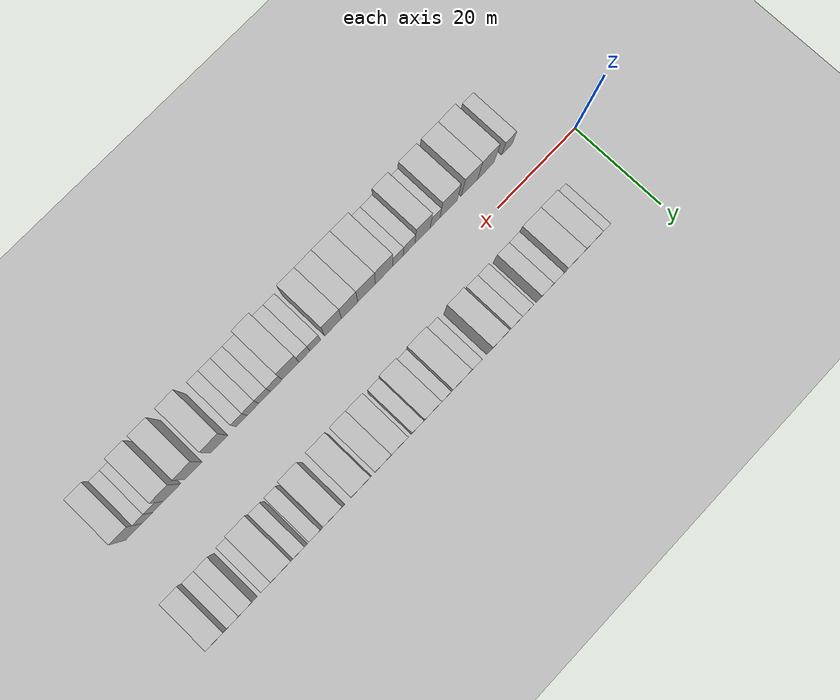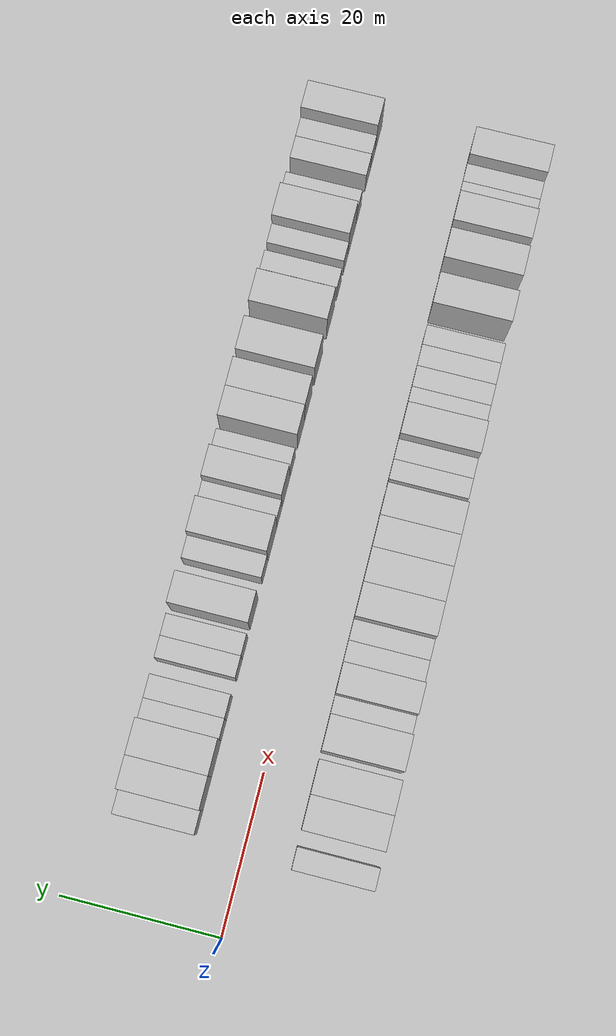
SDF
<sdf version="1.6">
 <world name="default">
  <include><name>ground_plane_1</name><uri>model://HANNAS_ground_plane</uri></include>
  <include>
   <name>ground_plane_2</name>
   <uri>model://HANNAS_ground_plane</uri>
   <pose>100 0 0  0 0 0</pose>
  </include>
  <model name="building_1">
   <static>1</static>
   <pose>12.4693 11.0000 0 0.000000 0.000000 1.570796</pose>
   <link name="link">
    <pose>0 0 3.00 0 0 0</pose>
    <collision name="collision"><geometry><box><size>10.0000 2.9386 6.0000</size></box></geometry></collision>
    <visual name="visual">
     <cast_shadows>0</cast_shadows>
     <geometry><box><size>10.0000 2.9386 6.0000</size></box></geometry>
     <material>
      <script>
       <uri>model://HANNAS_wall/materials/scripts</uri>
       <uri>model://HANNAS_wall/materials/textures</uri>
       <name>vrc/HANNAS_wall</name>
      </script>
     </material>
    </visual>
   </link>
  </model>
  <model name="building_2">
   <static>1</static>
   <pose>15.9527 11.0000 0 0.000000 0.000000 1.570796</pose>
   <link name="link">
    <pose>0 0 4.50 0 0 0</pose>
    <collision name="collision"><geometry><box><size>10.0000 4.0283 9.0000</size></box></geometry></collision>
    <visual name="visual">
     <cast_shadows>0</cast_shadows>
     <geometry><box><size>10.0000 4.0283 9.0000</size></box></geometry>
     <material>
      <script>
       <uri>model://HANNAS_wall/materials/scripts</uri>
       <uri>model://HANNAS_wall/materials/textures</uri>
       <name>vrc/HANNAS_wall</name>
      </script>
     </material>
    </visual>
   </link>
  </model>
  <model name="building_3">
   <static>1</static>
   <pose>20.1891 11.0000 0 0.000000 0.000000 1.570796</pose>
   <link name="link">
    <pose>0 0 4.50 0 0 0</pose>
    <collision name="collision"><geometry><box><size>10.0000 4.4444 9.0000</size></box></geometry></collision>
    <visual name="visual">
     <cast_shadows>0</cast_shadows>
     <geometry><box><size>10.0000 4.4444 9.0000</size></box></geometry>
     <material>
      <script>
       <uri>model://HANNAS_wall/materials/scripts</uri>
       <uri>model://HANNAS_wall/materials/textures</uri>
       <name>vrc/HANNAS_wall</name>
      </script>
     </material>
    </visual>
   </link>
  </model>
  <model name="building_4">
   <static>1</static>
   <pose>23.6728 11.0000 0 0.000000 0.000000 1.570796</pose>
   <link name="link">
    <pose>0 0 3.00 0 0 0</pose>
    <collision name="collision"><geometry><box><size>10.0000 2.5231 6.0000</size></box></geometry></collision>
    <visual name="visual">
     <cast_shadows>0</cast_shadows>
     <geometry><box><size>10.0000 2.5231 6.0000</size></box></geometry>
     <material>
      <script>
       <uri>model://HANNAS_wall/materials/scripts</uri>
       <uri>model://HANNAS_wall/materials/textures</uri>
       <name>vrc/HANNAS_wall</name>
      </script>
     </material>
    </visual>
   </link>
  </model>
  <model name="building_5">
   <static>1</static>
   <pose>26.3972 11.0000 0 0.000000 0.000000 1.570796</pose>
   <link name="link">
    <pose>0 0 3.00 0 0 0</pose>
    <collision name="collision"><geometry><box><size>10.0000 2.9257 6.0000</size></box></geometry></collision>
    <visual name="visual">
     <cast_shadows>0</cast_shadows>
     <geometry><box><size>10.0000 2.9257 6.0000</size></box></geometry>
     <material>
      <script>
       <uri>model://HANNAS_wall/materials/scripts</uri>
       <uri>model://HANNAS_wall/materials/textures</uri>
       <name>vrc/HANNAS_wall</name>
      </script>
     </material>
    </visual>
   </link>
  </model>
  <model name="building_6">
   <static>1</static>
   <pose>31.2161 11.0000 0 0.000000 0.000000 1.570796</pose>
   <link name="link">
    <pose>0 0 3.00 0 0 0</pose>
    <collision name="collision"><geometry><box><size>10.0000 2.7120 6.0000</size></box></geometry></collision>
    <visual name="visual">
     <cast_shadows>0</cast_shadows>
     <geometry><box><size>10.0000 2.7120 6.0000</size></box></geometry>
     <material>
      <script>
       <uri>model://HANNAS_wall/materials/scripts</uri>
       <uri>model://HANNAS_wall/materials/textures</uri>
       <name>vrc/HANNAS_wall</name>
      </script>
     </material>
    </visual>
   </link>
  </model>
  <model name="building_7">
   <static>1</static>
   <pose>33.9364 11.0000 0 0.000000 0.000000 1.570796</pose>
   <link name="link">
    <pose>0 0 3.00 0 0 0</pose>
    <collision name="collision"><geometry><box><size>10.0000 2.7288 6.0000</size></box></geometry></collision>
    <visual name="visual">
     <cast_shadows>0</cast_shadows>
     <geometry><box><size>10.0000 2.7288 6.0000</size></box></geometry>
     <material>
      <script>
       <uri>model://HANNAS_wall/materials/scripts</uri>
       <uri>model://HANNAS_wall/materials/textures</uri>
       <name>vrc/HANNAS_wall</name>
      </script>
     </material>
    </visual>
   </link>
  </model>
  <model name="building_8">
   <static>1</static>
   <pose>38.2680 11.0000 0 0.000000 0.000000 1.570796</pose>
   <link name="link">
    <pose>0 0 4.50 0 0 0</pose>
    <collision name="collision"><geometry><box><size>10.0000 3.9342 9.0000</size></box></geometry></collision>
    <visual name="visual">
     <cast_shadows>0</cast_shadows>
     <geometry><box><size>10.0000 3.9342 9.0000</size></box></geometry>
     <material>
      <script>
       <uri>model://HANNAS_wall/materials/scripts</uri>
       <uri>model://HANNAS_wall/materials/textures</uri>
       <name>vrc/HANNAS_wall</name>
      </script>
     </material>
    </visual>
   </link>
  </model>
  <model name="building_9">
   <static>1</static>
   <pose>43.6566 11.0000 0 0.000000 0.000000 1.570796</pose>
   <link name="link">
    <pose>0 0 3.00 0 0 0</pose>
    <collision name="collision"><geometry><box><size>10.0000 2.8430 6.0000</size></box></geometry></collision>
    <visual name="visual">
     <cast_shadows>0</cast_shadows>
     <geometry><box><size>10.0000 2.8430 6.0000</size></box></geometry>
     <material>
      <script>
       <uri>model://HANNAS_wall/materials/scripts</uri>
       <uri>model://HANNAS_wall/materials/textures</uri>
       <name>vrc/HANNAS_wall</name>
      </script>
     </material>
    </visual>
   </link>
  </model>
  <model name="building_10">
   <static>1</static>
   <pose>47.2999 11.0000 0 0.000000 0.000000 1.570796</pose>
   <link name="link">
    <pose>0 0 4.50 0 0 0</pose>
    <collision name="collision"><geometry><box><size>10.0000 4.4437 9.0000</size></box></geometry></collision>
    <visual name="visual">
     <cast_shadows>0</cast_shadows>
     <geometry><box><size>10.0000 4.4437 9.0000</size></box></geometry>
     <material>
      <script>
       <uri>model://HANNAS_wall/materials/scripts</uri>
       <uri>model://HANNAS_wall/materials/textures</uri>
       <name>vrc/HANNAS_wall</name>
      </script>
     </material>
    </visual>
   </link>
  </model>
  <model name="building_11">
   <static>1</static>
   <pose>50.7997 11.0000 0 0.000000 0.000000 1.570796</pose>
   <link name="link">
    <pose>0 0 3.00 0 0 0</pose>
    <collision name="collision"><geometry><box><size>10.0000 2.5560 6.0000</size></box></geometry></collision>
    <visual name="visual">
     <cast_shadows>0</cast_shadows>
     <geometry><box><size>10.0000 2.5560 6.0000</size></box></geometry>
     <material>
      <script>
       <uri>model://HANNAS_wall/materials/scripts</uri>
       <uri>model://HANNAS_wall/materials/textures</uri>
       <name>vrc/HANNAS_wall</name>
      </script>
     </material>
    </visual>
   </link>
  </model>
  <model name="building_12">
   <static>1</static>
   <pose>54.0382 11.0000 0 0.000000 0.000000 1.570796</pose>
   <link name="link">
    <pose>0 0 4.50 0 0 0</pose>
    <collision name="collision"><geometry><box><size>10.0000 3.9210 9.0000</size></box></geometry></collision>
    <visual name="visual">
     <cast_shadows>0</cast_shadows>
     <geometry><box><size>10.0000 3.9210 9.0000</size></box></geometry>
     <material>
      <script>
       <uri>model://HANNAS_wall/materials/scripts</uri>
       <uri>model://HANNAS_wall/materials/textures</uri>
       <name>vrc/HANNAS_wall</name>
      </script>
     </material>
    </visual>
   </link>
  </model>
  <model name="building_13">
   <static>1</static>
   <pose>57.3779 11.0000 0 0.000000 0.000000 1.570796</pose>
   <link name="link">
    <pose>0 0 3.00 0 0 0</pose>
    <collision name="collision"><geometry><box><size>10.0000 2.7582 6.0000</size></box></geometry></collision>
    <visual name="visual">
     <cast_shadows>0</cast_shadows>
     <geometry><box><size>10.0000 2.7582 6.0000</size></box></geometry>
     <material>
      <script>
       <uri>model://HANNAS_wall/materials/scripts</uri>
       <uri>model://HANNAS_wall/materials/textures</uri>
       <name>vrc/HANNAS_wall</name>
      </script>
     </material>
    </visual>
   </link>
  </model>
  <model name="building_14">
   <static>1</static>
   <pose>61.6745 11.0000 0 0.000000 0.000000 1.570796</pose>
   <link name="link">
    <pose>0 0 4.50 0 0 0</pose>
    <collision name="collision"><geometry><box><size>10.0000 3.8351 9.0000</size></box></geometry></collision>
    <visual name="visual">
     <cast_shadows>0</cast_shadows>
     <geometry><box><size>10.0000 3.8351 9.0000</size></box></geometry>
     <material>
      <script>
       <uri>model://HANNAS_wall/materials/scripts</uri>
       <uri>model://HANNAS_wall/materials/textures</uri>
       <name>vrc/HANNAS_wall</name>
      </script>
     </material>
    </visual>
   </link>
  </model>
  <model name="building_15">
   <static>1</static>
   <pose>65.4515 11.0000 0 0.000000 0.000000 1.570796</pose>
   <link name="link">
    <pose>0 0 4.50 0 0 0</pose>
    <collision name="collision"><geometry><box><size>10.0000 3.7188 9.0000</size></box></geometry></collision>
    <visual name="visual">
     <cast_shadows>0</cast_shadows>
     <geometry><box><size>10.0000 3.7188 9.0000</size></box></geometry>
     <material>
      <script>
       <uri>model://HANNAS_wall/materials/scripts</uri>
       <uri>model://HANNAS_wall/materials/textures</uri>
       <name>vrc/HANNAS_wall</name>
      </script>
     </material>
    </visual>
   </link>
  </model>
  <model name="building_16">
   <static>1</static>
   <pose>70.4830 11.0000 0 0.000000 0.000000 1.570796</pose>
   <link name="link">
    <pose>0 0 4.50 0 0 0</pose>
    <collision name="collision"><geometry><box><size>10.0000 4.3443 9.0000</size></box></geometry></collision>
    <visual name="visual">
     <cast_shadows>0</cast_shadows>
     <geometry><box><size>10.0000 4.3443 9.0000</size></box></geometry>
     <material>
      <script>
       <uri>model://HANNAS_wall/materials/scripts</uri>
       <uri>model://HANNAS_wall/materials/textures</uri>
       <name>vrc/HANNAS_wall</name>
      </script>
     </material>
    </visual>
   </link>
  </model>
  <model name="building_17">
   <static>1</static>
   <pose>76.7704 11.0000 0 0.000000 0.000000 1.570796</pose>
   <link name="link">
    <pose>0 0 4.50 0 0 0</pose>
    <collision name="collision"><geometry><box><size>10.0000 4.2305 9.0000</size></box></geometry></collision>
    <visual name="visual">
     <cast_shadows>0</cast_shadows>
     <geometry><box><size>10.0000 4.2305 9.0000</size></box></geometry>
     <material>
      <script>
       <uri>model://HANNAS_wall/materials/scripts</uri>
       <uri>model://HANNAS_wall/materials/textures</uri>
       <name>vrc/HANNAS_wall</name>
      </script>
     </material>
    </visual>
   </link>
  </model>
  <model name="building_18">
   <static>1</static>
   <pose>81.1689 11.0000 0 0.000000 0.000000 1.570796</pose>
   <link name="link">
    <pose>0 0 3.00 0 0 0</pose>
    <collision name="collision"><geometry><box><size>10.0000 2.5665 6.0000</size></box></geometry></collision>
    <visual name="visual">
     <cast_shadows>0</cast_shadows>
     <geometry><box><size>10.0000 2.5665 6.0000</size></box></geometry>
     <material>
      <script>
       <uri>model://HANNAS_wall/materials/scripts</uri>
       <uri>model://HANNAS_wall/materials/textures</uri>
       <name>vrc/HANNAS_wall</name>
      </script>
     </material>
    </visual>
   </link>
  </model>
  <model name="building_19">
   <static>1</static>
   <pose>84.7434 11.0000 0 0.000000 0.000000 1.570796</pose>
   <link name="link">
    <pose>0 0 3.00 0 0 0</pose>
    <collision name="collision"><geometry><box><size>10.0000 2.5826 6.0000</size></box></geometry></collision>
    <visual name="visual">
     <cast_shadows>0</cast_shadows>
     <geometry><box><size>10.0000 2.5826 6.0000</size></box></geometry>
     <material>
      <script>
       <uri>model://HANNAS_wall/materials/scripts</uri>
       <uri>model://HANNAS_wall/materials/textures</uri>
       <name>vrc/HANNAS_wall</name>
      </script>
     </material>
    </visual>
   </link>
  </model>
  <model name="building_20">
   <static>1</static>
   <pose>88.2218 11.0000 0 0.000000 0.000000 1.570796</pose>
   <link name="link">
    <pose>0 0 4.50 0 0 0</pose>
    <collision name="collision"><geometry><box><size>10.0000 4.3742 9.0000</size></box></geometry></collision>
    <visual name="visual">
     <cast_shadows>0</cast_shadows>
     <geometry><box><size>10.0000 4.3742 9.0000</size></box></geometry>
     <material>
      <script>
       <uri>model://HANNAS_wall/materials/scripts</uri>
       <uri>model://HANNAS_wall/materials/textures</uri>
       <name>vrc/HANNAS_wall</name>
      </script>
     </material>
    </visual>
   </link>
  </model>
  <model name="building_21">
   <static>1</static>
   <pose>91.7784 11.0000 0 0.000000 0.000000 1.570796</pose>
   <link name="link">
    <pose>0 0 3.00 0 0 0</pose>
    <collision name="collision"><geometry><box><size>10.0000 2.7390 6.0000</size></box></geometry></collision>
    <visual name="visual">
     <cast_shadows>0</cast_shadows>
     <geometry><box><size>10.0000 2.7390 6.0000</size></box></geometry>
     <material>
      <script>
       <uri>model://HANNAS_wall/materials/scripts</uri>
       <uri>model://HANNAS_wall/materials/textures</uri>
       <name>vrc/HANNAS_wall</name>
      </script>
     </material>
    </visual>
   </link>
  </model>
  <model name="building_22">
   <static>1</static>
   <pose>96.6448 11.0000 0 0.000000 0.000000 1.570796</pose>
   <link name="link">
    <pose>0 0 3.00 0 0 0</pose>
    <collision name="collision"><geometry><box><size>10.0000 2.9938 6.0000</size></box></geometry></collision>
    <visual name="visual">
     <cast_shadows>0</cast_shadows>
     <geometry><box><size>10.0000 2.9938 6.0000</size></box></geometry>
     <material>
      <script>
       <uri>model://HANNAS_wall/materials/scripts</uri>
       <uri>model://HANNAS_wall/materials/textures</uri>
       <name>vrc/HANNAS_wall</name>
      </script>
     </material>
    </visual>
   </link>
  </model>
  <model name="building_23">
   <static>1</static>
   <pose>99.4413 11.0000 0 0.000000 0.000000 1.570796</pose>
   <link name="link">
    <pose>0 0 3.00 0 0 0</pose>
    <collision name="collision"><geometry><box><size>10.0000 2.5992 6.0000</size></box></geometry></collision>
    <visual name="visual">
     <cast_shadows>0</cast_shadows>
     <geometry><box><size>10.0000 2.5992 6.0000</size></box></geometry>
     <material>
      <script>
       <uri>model://HANNAS_wall/materials/scripts</uri>
       <uri>model://HANNAS_wall/materials/textures</uri>
       <name>vrc/HANNAS_wall</name>
      </script>
     </material>
    </visual>
   </link>
  </model>
  <model name="building_24">
   <static>1</static>
   <pose>102.6171 11.0000 0 0.000000 0.000000 1.570796</pose>
   <link name="link">
    <pose>0 0 4.50 0 0 0</pose>
    <collision name="collision"><geometry><box><size>10.0000 3.7523 9.0000</size></box></geometry></collision>
    <visual name="visual">
     <cast_shadows>0</cast_shadows>
     <geometry><box><size>10.0000 3.7523 9.0000</size></box></geometry>
     <material>
      <script>
       <uri>model://HANNAS_wall/materials/scripts</uri>
       <uri>model://HANNAS_wall/materials/textures</uri>
       <name>vrc/HANNAS_wall</name>
      </script>
     </material>
    </visual>
   </link>
  </model>
  <model name="building_48">
   <static>1</static>
   <pose>11.3614 -11.0000 0 0.000000 0.000000 1.570796</pose>
   <link name="link">
    <pose>0 0 3.00 0 0 0</pose>
    <collision name="collision"><geometry><box><size>10.0000 2.7227 6.0000</size></box></geometry></collision>
    <visual name="visual">
     <cast_shadows>0</cast_shadows>
     <geometry><box><size>10.0000 2.7227 6.0000</size></box></geometry>
     <material>
      <script>
       <uri>model://HANNAS_wall/materials/scripts</uri>
       <uri>model://HANNAS_wall/materials/textures</uri>
       <name>vrc/HANNAS_wall</name>
      </script>
     </material>
    </visual>
   </link>
  </model>
  <model name="building_49">
   <static>1</static>
   <pose>16.8233 -11.0000 0 0.000000 0.000000 1.570796</pose>
   <link name="link">
    <pose>0 0 4.50 0 0 0</pose>
    <collision name="collision"><geometry><box><size>10.0000 4.2013 9.0000</size></box></geometry></collision>
    <visual name="visual">
     <cast_shadows>0</cast_shadows>
     <geometry><box><size>10.0000 4.2013 9.0000</size></box></geometry>
     <material>
      <script>
       <uri>model://HANNAS_wall/materials/scripts</uri>
       <uri>model://HANNAS_wall/materials/textures</uri>
       <name>vrc/HANNAS_wall</name>
      </script>
     </material>
    </visual>
   </link>
  </model>
  <model name="building_50">
   <static>1</static>
   <pose>20.9922 -11.0000 0 0.000000 0.000000 1.570796</pose>
   <link name="link">
    <pose>0 0 4.50 0 0 0</pose>
    <collision name="collision"><geometry><box><size>10.0000 4.1364 9.0000</size></box></geometry></collision>
    <visual name="visual">
     <cast_shadows>0</cast_shadows>
     <geometry><box><size>10.0000 4.1364 9.0000</size></box></geometry>
     <material>
      <script>
       <uri>model://HANNAS_wall/materials/scripts</uri>
       <uri>model://HANNAS_wall/materials/textures</uri>
       <name>vrc/HANNAS_wall</name>
      </script>
     </material>
    </visual>
   </link>
  </model>
  <model name="building_51">
   <static>1</static>
   <pose>26.2591 -11.0000 0 0.000000 0.000000 1.570796</pose>
   <link name="link">
    <pose>0 0 4.50 0 0 0</pose>
    <collision name="collision"><geometry><box><size>10.0000 4.3973 9.0000</size></box></geometry></collision>
    <visual name="visual">
     <cast_shadows>0</cast_shadows>
     <geometry><box><size>10.0000 4.3973 9.0000</size></box></geometry>
     <material>
      <script>
       <uri>model://HANNAS_wall/materials/scripts</uri>
       <uri>model://HANNAS_wall/materials/textures</uri>
       <name>vrc/HANNAS_wall</name>
      </script>
     </material>
    </visual>
   </link>
  </model>
  <model name="building_52">
   <static>1</static>
   <pose>29.6619 -11.0000 0 0.000000 0.000000 1.570796</pose>
   <link name="link">
    <pose>0 0 3.00 0 0 0</pose>
    <collision name="collision"><geometry><box><size>10.0000 2.4083 6.0000</size></box></geometry></collision>
    <visual name="visual">
     <cast_shadows>0</cast_shadows>
     <geometry><box><size>10.0000 2.4083 6.0000</size></box></geometry>
     <material>
      <script>
       <uri>model://HANNAS_wall/materials/scripts</uri>
       <uri>model://HANNAS_wall/materials/textures</uri>
       <name>vrc/HANNAS_wall</name>
      </script>
     </material>
    </visual>
   </link>
  </model>
  <model name="building_53">
   <static>1</static>
   <pose>32.7780 -11.0000 0 0.000000 0.000000 1.570796</pose>
   <link name="link">
    <pose>0 0 4.50 0 0 0</pose>
    <collision name="collision"><geometry><box><size>10.0000 3.8241 9.0000</size></box></geometry></collision>
    <visual name="visual">
     <cast_shadows>0</cast_shadows>
     <geometry><box><size>10.0000 3.8241 9.0000</size></box></geometry>
     <material>
      <script>
       <uri>model://HANNAS_wall/materials/scripts</uri>
       <uri>model://HANNAS_wall/materials/textures</uri>
       <name>vrc/HANNAS_wall</name>
      </script>
     </material>
    </visual>
   </link>
  </model>
  <model name="building_54">
   <static>1</static>
   <pose>36.1393 -11.0000 0 0.000000 0.000000 1.570796</pose>
   <link name="link">
    <pose>0 0 3.00 0 0 0</pose>
    <collision name="collision"><geometry><box><size>10.0000 2.8985 6.0000</size></box></geometry></collision>
    <visual name="visual">
     <cast_shadows>0</cast_shadows>
     <geometry><box><size>10.0000 2.8985 6.0000</size></box></geometry>
     <material>
      <script>
       <uri>model://HANNAS_wall/materials/scripts</uri>
       <uri>model://HANNAS_wall/materials/textures</uri>
       <name>vrc/HANNAS_wall</name>
      </script>
     </material>
    </visual>
   </link>
  </model>
  <model name="building_55">
   <static>1</static>
   <pose>38.9028 -11.0000 0 0.000000 0.000000 1.570796</pose>
   <link name="link">
    <pose>0 0 3.00 0 0 0</pose>
    <collision name="collision"><geometry><box><size>10.0000 2.6283 6.0000</size></box></geometry></collision>
    <visual name="visual">
     <cast_shadows>0</cast_shadows>
     <geometry><box><size>10.0000 2.6283 6.0000</size></box></geometry>
     <material>
      <script>
       <uri>model://HANNAS_wall/materials/scripts</uri>
       <uri>model://HANNAS_wall/materials/textures</uri>
       <name>vrc/HANNAS_wall</name>
      </script>
     </material>
    </visual>
   </link>
  </model>
  <model name="building_56">
   <static>1</static>
   <pose>42.3489 -11.0000 0 0.000000 0.000000 1.570796</pose>
   <link name="link">
    <pose>0 0 4.50 0 0 0</pose>
    <collision name="collision"><geometry><box><size>10.0000 4.2639 9.0000</size></box></geometry></collision>
    <visual name="visual">
     <cast_shadows>0</cast_shadows>
     <geometry><box><size>10.0000 4.2639 9.0000</size></box></geometry>
     <material>
      <script>
       <uri>model://HANNAS_wall/materials/scripts</uri>
       <uri>model://HANNAS_wall/materials/textures</uri>
       <name>vrc/HANNAS_wall</name>
      </script>
     </material>
    </visual>
   </link>
  </model>
  <model name="building_57">
   <static>1</static>
   <pose>46.6372 -11.0000 0 0.000000 0.000000 1.570796</pose>
   <link name="link">
    <pose>0 0 4.50 0 0 0</pose>
    <collision name="collision"><geometry><box><size>10.0000 4.3127 9.0000</size></box></geometry></collision>
    <visual name="visual">
     <cast_shadows>0</cast_shadows>
     <geometry><box><size>10.0000 4.3127 9.0000</size></box></geometry>
     <material>
      <script>
       <uri>model://HANNAS_wall/materials/scripts</uri>
       <uri>model://HANNAS_wall/materials/textures</uri>
       <name>vrc/HANNAS_wall</name>
      </script>
     </material>
    </visual>
   </link>
  </model>
  <model name="building_58">
   <static>1</static>
   <pose>50.7692 -11.0000 0 0.000000 0.000000 1.570796</pose>
   <link name="link">
    <pose>0 0 4.50 0 0 0</pose>
    <collision name="collision"><geometry><box><size>10.0000 3.9514 9.0000</size></box></geometry></collision>
    <visual name="visual">
     <cast_shadows>0</cast_shadows>
     <geometry><box><size>10.0000 3.9514 9.0000</size></box></geometry>
     <material>
      <script>
       <uri>model://HANNAS_wall/materials/scripts</uri>
       <uri>model://HANNAS_wall/materials/textures</uri>
       <name>vrc/HANNAS_wall</name>
      </script>
     </material>
    </visual>
   </link>
  </model>
  <model name="building_59">
   <static>1</static>
   <pose>54.7804 -11.0000 0 0.000000 0.000000 1.570796</pose>
   <link name="link">
    <pose>0 0 4.50 0 0 0</pose>
    <collision name="collision"><geometry><box><size>10.0000 4.0710 9.0000</size></box></geometry></collision>
    <visual name="visual">
     <cast_shadows>0</cast_shadows>
     <geometry><box><size>10.0000 4.0710 9.0000</size></box></geometry>
     <material>
      <script>
       <uri>model://HANNAS_wall/materials/scripts</uri>
       <uri>model://HANNAS_wall/materials/textures</uri>
       <name>vrc/HANNAS_wall</name>
      </script>
     </material>
    </visual>
   </link>
  </model>
  <model name="building_60">
   <static>1</static>
   <pose>59.1129 -11.0000 0 0.000000 0.000000 1.570796</pose>
   <link name="link">
    <pose>0 0 3.00 0 0 0</pose>
    <collision name="collision"><geometry><box><size>10.0000 2.5940 6.0000</size></box></geometry></collision>
    <visual name="visual">
     <cast_shadows>0</cast_shadows>
     <geometry><box><size>10.0000 2.5940 6.0000</size></box></geometry>
     <material>
      <script>
       <uri>model://HANNAS_wall/materials/scripts</uri>
       <uri>model://HANNAS_wall/materials/textures</uri>
       <name>vrc/HANNAS_wall</name>
      </script>
     </material>
    </visual>
   </link>
  </model>
  <model name="building_61">
   <static>1</static>
   <pose>61.7125 -11.0000 0 0.000000 0.000000 1.570796</pose>
   <link name="link">
    <pose>0 0 3.00 0 0 0</pose>
    <collision name="collision"><geometry><box><size>10.0000 2.6053 6.0000</size></box></geometry></collision>
    <visual name="visual">
     <cast_shadows>0</cast_shadows>
     <geometry><box><size>10.0000 2.6053 6.0000</size></box></geometry>
     <material>
      <script>
       <uri>model://HANNAS_wall/materials/scripts</uri>
       <uri>model://HANNAS_wall/materials/textures</uri>
       <name>vrc/HANNAS_wall</name>
      </script>
     </material>
    </visual>
   </link>
  </model>
  <model name="building_62">
   <static>1</static>
   <pose>65.0497 -11.0000 0 0.000000 0.000000 1.570796</pose>
   <link name="link">
    <pose>0 0 4.50 0 0 0</pose>
    <collision name="collision"><geometry><box><size>10.0000 4.0690 9.0000</size></box></geometry></collision>
    <visual name="visual">
     <cast_shadows>0</cast_shadows>
     <geometry><box><size>10.0000 4.0690 9.0000</size></box></geometry>
     <material>
      <script>
       <uri>model://HANNAS_wall/materials/scripts</uri>
       <uri>model://HANNAS_wall/materials/textures</uri>
       <name>vrc/HANNAS_wall</name>
      </script>
     </material>
    </visual>
   </link>
  </model>
  <model name="building_63">
   <static>1</static>
   <pose>68.4718 -11.0000 0 0.000000 0.000000 1.570796</pose>
   <link name="link">
    <pose>0 0 3.00 0 0 0</pose>
    <collision name="collision"><geometry><box><size>10.0000 2.7753 6.0000</size></box></geometry></collision>
    <visual name="visual">
     <cast_shadows>0</cast_shadows>
     <geometry><box><size>10.0000 2.7753 6.0000</size></box></geometry>
     <material>
      <script>
       <uri>model://HANNAS_wall/materials/scripts</uri>
       <uri>model://HANNAS_wall/materials/textures</uri>
       <name>vrc/HANNAS_wall</name>
      </script>
     </material>
    </visual>
   </link>
  </model>
  <model name="building_64">
   <static>1</static>
   <pose>71.2318 -11.0000 0 0.000000 0.000000 1.570796</pose>
   <link name="link">
    <pose>0 0 3.00 0 0 0</pose>
    <collision name="collision"><geometry><box><size>10.0000 2.7448 6.0000</size></box></geometry></collision>
    <visual name="visual">
     <cast_shadows>0</cast_shadows>
     <geometry><box><size>10.0000 2.7448 6.0000</size></box></geometry>
     <material>
      <script>
       <uri>model://HANNAS_wall/materials/scripts</uri>
       <uri>model://HANNAS_wall/materials/textures</uri>
       <name>vrc/HANNAS_wall</name>
      </script>
     </material>
    </visual>
   </link>
  </model>
  <model name="building_65">
   <static>1</static>
   <pose>74.0059 -11.0000 0 0.000000 0.000000 1.570796</pose>
   <link name="link">
    <pose>0 0 3.00 0 0 0</pose>
    <collision name="collision"><geometry><box><size>10.0000 2.8035 6.0000</size></box></geometry></collision>
    <visual name="visual">
     <cast_shadows>0</cast_shadows>
     <geometry><box><size>10.0000 2.8035 6.0000</size></box></geometry>
     <material>
      <script>
       <uri>model://HANNAS_wall/materials/scripts</uri>
       <uri>model://HANNAS_wall/materials/textures</uri>
       <name>vrc/HANNAS_wall</name>
      </script>
     </material>
    </visual>
   </link>
  </model>
  <model name="building_66">
   <static>1</static>
   <pose>76.6972 -11.0000 0 0.000000 0.000000 1.570796</pose>
   <link name="link">
    <pose>0 0 3.00 0 0 0</pose>
    <collision name="collision"><geometry><box><size>10.0000 2.5790 6.0000</size></box></geometry></collision>
    <visual name="visual">
     <cast_shadows>0</cast_shadows>
     <geometry><box><size>10.0000 2.5790 6.0000</size></box></geometry>
     <material>
      <script>
       <uri>model://HANNAS_wall/materials/scripts</uri>
       <uri>model://HANNAS_wall/materials/textures</uri>
       <name>vrc/HANNAS_wall</name>
      </script>
     </material>
    </visual>
   </link>
  </model>
  <model name="building_67">
   <static>1</static>
   <pose>82.0123 -11.0000 0 0.000000 0.000000 1.570796</pose>
   <link name="link">
    <pose>0 0 4.50 0 0 0</pose>
    <collision name="collision"><geometry><box><size>10.0000 4.0513 9.0000</size></box></geometry></collision>
    <visual name="visual">
     <cast_shadows>0</cast_shadows>
     <geometry><box><size>10.0000 4.0513 9.0000</size></box></geometry>
     <material>
      <script>
       <uri>model://HANNAS_wall/materials/scripts</uri>
       <uri>model://HANNAS_wall/materials/textures</uri>
       <name>vrc/HANNAS_wall</name>
      </script>
     </material>
    </visual>
   </link>
  </model>
  <model name="building_68">
   <static>1</static>
   <pose>88.0237 -11.0000 0 0.000000 0.000000 1.570796</pose>
   <link name="link">
    <pose>0 0 4.50 0 0 0</pose>
    <collision name="collision"><geometry><box><size>10.0000 3.9715 9.0000</size></box></geometry></collision>
    <visual name="visual">
     <cast_shadows>0</cast_shadows>
     <geometry><box><size>10.0000 3.9715 9.0000</size></box></geometry>
     <material>
      <script>
       <uri>model://HANNAS_wall/materials/scripts</uri>
       <uri>model://HANNAS_wall/materials/textures</uri>
       <name>vrc/HANNAS_wall</name>
      </script>
     </material>
    </visual>
   </link>
  </model>
  <model name="building_69">
   <static>1</static>
   <pose>92.9810 -11.0000 0 0.000000 0.000000 1.570796</pose>
   <link name="link">
    <pose>0 0 4.50 0 0 0</pose>
    <collision name="collision"><geometry><box><size>10.0000 3.9431 9.0000</size></box></geometry></collision>
    <visual name="visual">
     <cast_shadows>0</cast_shadows>
     <geometry><box><size>10.0000 3.9431 9.0000</size></box></geometry>
     <material>
      <script>
       <uri>model://HANNAS_wall/materials/scripts</uri>
       <uri>model://HANNAS_wall/materials/textures</uri>
       <name>vrc/HANNAS_wall</name>
      </script>
     </material>
    </visual>
   </link>
  </model>
  <model name="building_70">
   <static>1</static>
   <pose>96.2136 -11.0000 0 0.000000 0.000000 1.570796</pose>
   <link name="link">
    <pose>0 0 3.00 0 0 0</pose>
    <collision name="collision"><geometry><box><size>10.0000 2.5221 6.0000</size></box></geometry></collision>
    <visual name="visual">
     <cast_shadows>0</cast_shadows>
     <geometry><box><size>10.0000 2.5221 6.0000</size></box></geometry>
     <material>
      <script>
       <uri>model://HANNAS_wall/materials/scripts</uri>
       <uri>model://HANNAS_wall/materials/textures</uri>
       <name>vrc/HANNAS_wall</name>
      </script>
     </material>
    </visual>
   </link>
  </model>
  <model name="building_71">
   <static>1</static>
   <pose>98.6908 -11.0000 0 0.000000 0.000000 1.570796</pose>
   <link name="link">
    <pose>0 0 3.00 0 0 0</pose>
    <collision name="collision"><geometry><box><size>10.0000 2.4321 6.0000</size></box></geometry></collision>
    <visual name="visual">
     <cast_shadows>0</cast_shadows>
     <geometry><box><size>10.0000 2.4321 6.0000</size></box></geometry>
     <material>
      <script>
       <uri>model://HANNAS_wall/materials/scripts</uri>
       <uri>model://HANNAS_wall/materials/textures</uri>
       <name>vrc/HANNAS_wall</name>
      </script>
     </material>
    </visual>
   </link>
  </model>
  <model name="building_72">
   <static>1</static>
   <pose>101.7812 -11.0000 0 0.000000 0.000000 1.570796</pose>
   <link name="link">
    <pose>0 0 4.50 0 0 0</pose>
    <collision name="collision"><geometry><box><size>10.0000 3.7488 9.0000</size></box></geometry></collision>
    <visual name="visual">
     <cast_shadows>0</cast_shadows>
     <geometry><box><size>10.0000 3.7488 9.0000</size></box></geometry>
     <material>
      <script>
       <uri>model://HANNAS_wall/materials/scripts</uri>
       <uri>model://HANNAS_wall/materials/textures</uri>
       <name>vrc/HANNAS_wall</name>
      </script>
     </material>
    </visual>
   </link>
  </model>
 </world>
</sdf>
